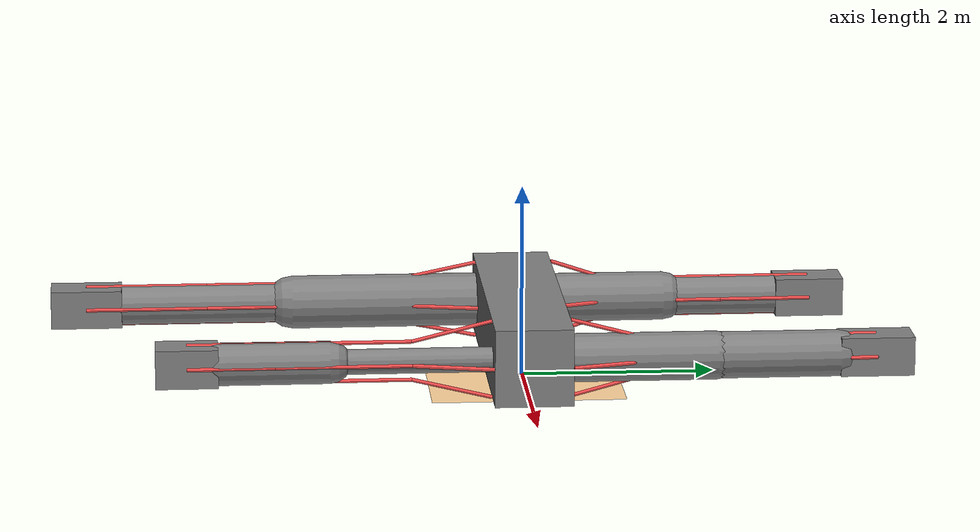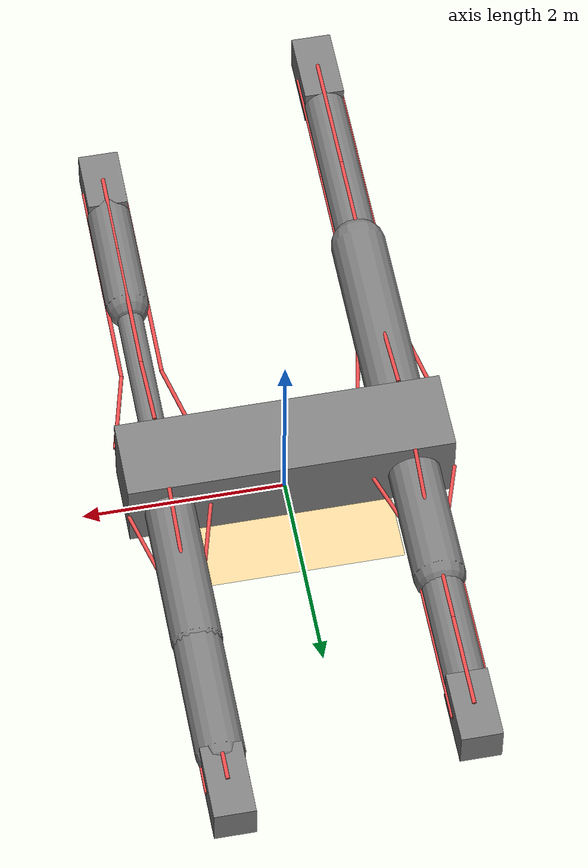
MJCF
<mujoco model="robot">
	<default>
		<default class="/"/>
	</default>
	<worldbody>
		<light name="//unnamed_light_0" class="/" directional="true" pos="-0.5 0.5 3" dir="0 0 -1"/>
		<geom name="floor" class="/" type="plane" size="1 1 1" rgba="1 0.83 0.61 0.5" pos="0 0 0"/>
		<body name="main" pos="0 0 0.5">
			<joint name="root" class="/" type="free" pos="0 0 0" limited="false" margin="0.01" armature="0" damping="0"/>
			<geom name="main_geom" class="/" type="box" size="1.6 0.4 0.4" pos="0 0 0"/>
			<site name="lf1_1" class="/" pos="1.2 0.4 0.4"/>
			<site name="lf1_2" class="/" pos="0.8 0.4 0"/>
			<site name="lf1_3" class="/" pos="1.2 0.4 -0.4"/>
			<site name="lf1_4" class="/" pos="1.6 0.4 0"/>
			<site name="rf1_1" class="/" pos="1.2 -0.4 0.4"/>
			<site name="rf1_2" class="/" pos="0.8 -0.4 0"/>
			<site name="rf1_3" class="/" pos="1.2 -0.4 -0.4"/>
			<site name="rf1_4" class="/" pos="1.6 -0.4 0"/>
			<site name="lb1_1" class="/" pos="-1.2 0.4 0.4"/>
			<site name="lb1_2" class="/" pos="-1.6 0.4 0"/>
			<site name="lb1_3" class="/" pos="-1.2 0.4 -0.4"/>
			<site name="lb1_4" class="/" pos="-0.8 0.4 0"/>
			<site name="rb1_1" class="/" pos="-1.2 -0.4 0.4"/>
			<site name="rb1_2" class="/" pos="-1.6 -0.4 0"/>
			<site name="rb1_3" class="/" pos="-1.2 -0.4 -0.4"/>
			<site name="rb1_4" class="/" pos="-0.8 -0.4 0"/>
			<body name="lf_leg1" pos="1.2 1.15 0">
				<geom name="lf_leg1_geom" class="/" type="capsule" size="0.247" fromto="0 -0.746 0 0 0.746 0" pos="0 0 0"/>
				<joint name="lf_leg1_Joint" class="/" type="ball" pos="0 -0.746 0" range="0 180"/>
				<site name="lf1_1e" class="/" pos="0 0 0.2"/>
				<site name="lf1_2e" class="/" pos="-0.2 0 0"/>
				<site name="lf1_3e" class="/" pos="0 0 -0.2"/>
				<site name="lf1_4e" class="/" pos="0.2 0 0"/>
				<site name="lf2_1" class="/" pos="0 0 0.2"/>
				<site name="lf2_2" class="/" pos="-0.2 0 0"/>
				<site name="lf2_3" class="/" pos="0 0 -0.2"/>
				<site name="lf2_4" class="/" pos="0.2 0 0"/>
				<body name="lf_leg2" pos="0 1.37 0">
					<geom name="lf_leg2_geom" class="/" type="capsule" size="0.238" fromto="0 -0.624 0 0 0.624 0" pos="0 0 0"/>
					<joint name="lf_leg2_Joint" class="/" type="ball" pos="0 -0.624 0" range="0 180"/>
					<site name="lf2_1e" class="/" pos="0 0 0.2"/>
					<site name="lf2_2e" class="/" pos="-0.2 0 0"/>
					<site name="lf2_3e" class="/" pos="0 0 -0.2"/>
					<site name="lf2_4e" class="/" pos="0.2 0 0"/>
					<site name="lf3_1" class="/" pos="0 0 0.2"/>
					<site name="lf3_2" class="/" pos="-0.2 0 0"/>
					<site name="lf3_3" class="/" pos="0 0 -0.2"/>
					<site name="lf3_4" class="/" pos="0.2 0 0"/>
					<body name="lf_leg3" pos="0 1 0">
						<geom name="lf_leg3_geom" class="/" type="box" size="0.2" fromto="0 -0.376 0 0 0.376 0" pos="0 0 0"/>
						<joint name="lf_leg3_Joint" class="/" type="ball" pos="0 -0.626 0" range="0 180"/>
						<site name="lf3_1e" class="/" pos="0 0 0.2"/>
						<site name="lf3_2e" class="/" pos="-0.2 0 0"/>
						<site name="lf3_3e" class="/" pos="0 0 -0.2"/>
						<site name="lf3_4e" class="/" pos="0.2 0 0"/>
					</body>
				</body>
			</body>
			<body name="rf_leg1" pos="1.2 -1.22 0">
				<geom name="rf_leg1_geom" class="/" type="capsule" size="0.128" fromto="0 -0.821 0 0 0.821 0" pos="0 0 0"/>
				<joint name="rf_leg1_Joint" class="/" type="ball" pos="0 0.821 0" range="0 180"/>
				<site name="rf1_1e" class="/" pos="0 0 0.2"/>
				<site name="rf1_2e" class="/" pos="-0.2 0 0"/>
				<site name="rf1_3e" class="/" pos="0 0 -0.2"/>
				<site name="rf1_4e" class="/" pos="0.2 0 0"/>
				<site name="rf2_1" class="/" pos="0 0 0.2"/>
				<site name="rf2_2" class="/" pos="-0.2 0 0"/>
				<site name="rf2_3" class="/" pos="0 0 -0.2"/>
				<site name="rf2_4" class="/" pos="0.2 0 0"/>
				<body name="rf_leg2" pos="0 -1.39 0">
					<geom name="rf_leg2_geom" class="/" type="capsule" size="0.217" fromto="0 -0.567 0 0 0.567 0" pos="0 0 0"/>
					<joint name="rf_leg2_Joint" class="/" type="ball" pos="0 0.567 0" range="0 180"/>
					<site name="rf2_1e" class="/" pos="0 0 0.2"/>
					<site name="rf2_2e" class="/" pos="-0.2 0 0"/>
					<site name="rf2_3e" class="/" pos="0 0 -0.2"/>
					<site name="rf2_4e" class="/" pos="0.2 0 0"/>
					<site name="rf3_1" class="/" pos="0 0 0.2"/>
					<site name="rf3_2" class="/" pos="-0.2 0 0"/>
					<site name="rf3_3" class="/" pos="0 0 -0.2"/>
					<site name="rf3_4" class="/" pos="0.2 0 0"/>
					<body name="rf_leg3" pos="0 -0.885 0">
						<geom name="rf_leg3_geom" class="/" type="box" size="0.2" fromto="0 -0.318 0 0 0.318 0" pos="0 0 0"/>
						<joint name="rf_leg3_Joint" class="/" type="ball" pos="0 0.568 0" range="0 180"/>
						<site name="rf3_1e" class="/" pos="0 0 0.2"/>
						<site name="rf3_2e" class="/" pos="-0.2 0 0"/>
						<site name="rf3_3e" class="/" pos="0 0 -0.2"/>
						<site name="rf3_4e" class="/" pos="0.2 0 0"/>
					</body>
				</body>
			</body>
			<body name="lb_leg1" pos="-1.2 0.996 0">
				<geom name="lb_leg1_geom" class="/" type="capsule" size="0.257" fromto="0 -0.596 0 0 0.596 0" pos="0 0 0"/>
				<joint name="lb_leg1_Joint" class="/" type="ball" pos="0 -0.596 0" range="0 180"/>
				<site name="lb1_1e" class="/" pos="0 0 0.2"/>
				<site name="lb1_2e" class="/" pos="-0.2 0 0"/>
				<site name="lb1_3e" class="/" pos="0 0 -0.2"/>
				<site name="lb1_4e" class="/" pos="0.2 0 0"/>
				<site name="lb2_1" class="/" pos="0 0 0.2"/>
				<site name="lb2_2" class="/" pos="-0.2 0 0"/>
				<site name="lb2_3" class="/" pos="0 0 -0.2"/>
				<site name="lb2_4" class="/" pos="0.2 0 0"/>
				<body name="lb_leg2" pos="0 1.2 0">
					<geom name="lb_leg2_geom" class="/" type="capsule" size="0.205" fromto="0 -0.599 0 0 0.599 0" pos="0 0 0"/>
					<joint name="lb_leg2_Joint" class="/" type="ball" pos="0 -0.599 0" range="0 180"/>
					<site name="lb2_1e" class="/" pos="0 0 0.2"/>
					<site name="lb2_2e" class="/" pos="-0.2 0 0"/>
					<site name="lb2_3e" class="/" pos="0 0 -0.2"/>
					<site name="lb2_4e" class="/" pos="0.2 0 0"/>
					<site name="lb3_1" class="/" pos="0 0 0.2"/>
					<site name="lb3_2" class="/" pos="-0.2 0 0"/>
					<site name="lb3_3" class="/" pos="0 0 -0.2"/>
					<site name="lb3_4" class="/" pos="0.2 0 0"/>
					<body name="lb_leg3" pos="0 0.958 0">
						<geom name="lb_leg3_geom" class="/" type="box" size="0.2" fromto="0 -0.359 0 0 0.359 0" pos="0 0 0"/>
						<joint name="lb_leg3_Joint" class="/" type="ball" pos="0 -0.609 0" range="0 180"/>
						<site name="lb3_1e" class="/" pos="0 0 0.2"/>
						<site name="lb3_2e" class="/" pos="-0.2 0 0"/>
						<site name="lb3_3e" class="/" pos="0 0 -0.2"/>
						<site name="lb3_4e" class="/" pos="0.2 0 0"/>
					</body>
				</body>
			</body>
			<body name="rb_leg1" pos="-1.2 -1.38 0">
				<geom name="rb_leg1_geom" class="/" type="capsule" size="0.279" fromto="0 -0.977 0 0 0.977 0" pos="0 0 0"/>
				<joint name="rb_leg1_Joint" class="/" type="ball" pos="0 0.977 0" range="0 180"/>
				<site name="rb1_1e" class="/" pos="0 0 0.2"/>
				<site name="rb1_2e" class="/" pos="-0.2 0 0"/>
				<site name="rb1_3e" class="/" pos="0 0 -0.2"/>
				<site name="rb1_4e" class="/" pos="0.2 0 0"/>
				<site name="rb2_1" class="/" pos="0 0 0.2"/>
				<site name="rb2_2" class="/" pos="-0.2 0 0"/>
				<site name="rb2_3" class="/" pos="0 0 -0.2"/>
				<site name="rb2_4" class="/" pos="0.2 0 0"/>
				<body name="rb_leg2" pos="0 -1.88 0">
					<geom name="rb_leg2_geom" class="/" type="capsule" size="0.207" fromto="0 -0.899 0 0 0.899 0" pos="0 0 0"/>
					<joint name="rb_leg2_Joint" class="/" type="ball" pos="0 0.899 0" range="0 180"/>
					<site name="rb2_1e" class="/" pos="0 0 0.2"/>
					<site name="rb2_2e" class="/" pos="-0.2 0 0"/>
					<site name="rb2_3e" class="/" pos="0 0 -0.2"/>
					<site name="rb2_4e" class="/" pos="0.2 0 0"/>
					<site name="rb3_1" class="/" pos="0 0 0.2"/>
					<site name="rb3_2" class="/" pos="-0.2 0 0"/>
					<site name="rb3_3" class="/" pos="0 0 -0.2"/>
					<site name="rb3_4" class="/" pos="0.2 0 0"/>
					<body name="rb_leg3" pos="0 -1.27 0">
						<geom name="rb_leg3_geom" class="/" type="box" size="0.2" fromto="0 -0.372 0 0 0.372 0" pos="0 0 0"/>
						<joint name="rb_leg3_Joint" class="/" type="ball" pos="0 0.622 0" range="0 180"/>
						<site name="rb3_1e" class="/" pos="0 0 0.2"/>
						<site name="rb3_2e" class="/" pos="-0.2 0 0"/>
						<site name="rb3_3e" class="/" pos="0 0 -0.2"/>
						<site name="rb3_4e" class="/" pos="0.2 0 0"/>
					</body>
				</body>
			</body>
		</body>
	</worldbody>
	<tendon>
		<spatial name="lf1_1" class="/" width="0.02" rgba="0.95 0.3 0.3 1">
			<site site="lf1_1"/>
			<site site="lf1_1e"/>
		</spatial>
		<spatial name="lf1_2" class="/" width="0.02" rgba="0.95 0.3 0.3 1">
			<site site="lf1_2"/>
			<site site="lf1_2e"/>
		</spatial>
		<spatial name="lf1_3" class="/" width="0.02" rgba="0.95 0.3 0.3 1">
			<site site="lf1_3"/>
			<site site="lf1_3e"/>
		</spatial>
		<spatial name="lf1_4" class="/" width="0.02" rgba="0.95 0.3 0.3 1">
			<site site="lf1_4"/>
			<site site="lf1_4e"/>
		</spatial>
		<spatial name="lf2_1" class="/" width="0.02" rgba="0.95 0.3 0.3 1">
			<site site="lf2_1"/>
			<site site="lf2_1e"/>
		</spatial>
		<spatial name="lf2_2" class="/" width="0.02" rgba="0.95 0.3 0.3 1">
			<site site="lf2_2"/>
			<site site="lf2_2e"/>
		</spatial>
		<spatial name="lf2_3" class="/" width="0.02" rgba="0.95 0.3 0.3 1">
			<site site="lf2_3"/>
			<site site="lf2_3e"/>
		</spatial>
		<spatial name="lf2_4" class="/" width="0.02" rgba="0.95 0.3 0.3 1">
			<site site="lf2_4"/>
			<site site="lf2_4e"/>
		</spatial>
		<spatial name="lf3_1" class="/" width="0.02" rgba="0.95 0.3 0.3 1">
			<site site="lf3_1"/>
			<site site="lf3_1e"/>
		</spatial>
		<spatial name="lf3_2" class="/" width="0.02" rgba="0.95 0.3 0.3 1">
			<site site="lf3_2"/>
			<site site="lf3_2e"/>
		</spatial>
		<spatial name="lf3_3" class="/" width="0.02" rgba="0.95 0.3 0.3 1">
			<site site="lf3_3"/>
			<site site="lf3_3e"/>
		</spatial>
		<spatial name="lf3_4" class="/" width="0.02" rgba="0.95 0.3 0.3 1">
			<site site="lf3_4"/>
			<site site="lf3_4e"/>
		</spatial>
		<spatial name="rf1_1" class="/" width="0.02" rgba="0.95 0.3 0.3 1">
			<site site="rf1_1"/>
			<site site="rf1_1e"/>
		</spatial>
		<spatial name="rf1_2" class="/" width="0.02" rgba="0.95 0.3 0.3 1">
			<site site="rf1_2"/>
			<site site="rf1_2e"/>
		</spatial>
		<spatial name="rf1_3" class="/" width="0.02" rgba="0.95 0.3 0.3 1">
			<site site="rf1_3"/>
			<site site="rf1_3e"/>
		</spatial>
		<spatial name="rf1_4" class="/" width="0.02" rgba="0.95 0.3 0.3 1">
			<site site="rf1_4"/>
			<site site="rf1_4e"/>
		</spatial>
		<spatial name="rf2_1" class="/" width="0.02" rgba="0.95 0.3 0.3 1">
			<site site="rf2_1"/>
			<site site="rf2_1e"/>
		</spatial>
		<spatial name="rf2_2" class="/" width="0.02" rgba="0.95 0.3 0.3 1">
			<site site="rf2_2"/>
			<site site="rf2_2e"/>
		</spatial>
		<spatial name="rf2_3" class="/" width="0.02" rgba="0.95 0.3 0.3 1">
			<site site="rf2_3"/>
			<site site="rf2_3e"/>
		</spatial>
		<spatial name="rf2_4" class="/" width="0.02" rgba="0.95 0.3 0.3 1">
			<site site="rf2_4"/>
			<site site="rf2_4e"/>
		</spatial>
		<spatial name="rf3_1" class="/" width="0.02" rgba="0.95 0.3 0.3 1">
			<site site="rf3_1"/>
			<site site="rf3_1e"/>
		</spatial>
		<spatial name="rf3_2" class="/" width="0.02" rgba="0.95 0.3 0.3 1">
			<site site="rf3_2"/>
			<site site="rf3_2e"/>
		</spatial>
		<spatial name="rf3_3" class="/" width="0.02" rgba="0.95 0.3 0.3 1">
			<site site="rf3_3"/>
			<site site="rf3_3e"/>
		</spatial>
		<spatial name="rf3_4" class="/" width="0.02" rgba="0.95 0.3 0.3 1">
			<site site="rf3_4"/>
			<site site="rf3_4e"/>
		</spatial>
		<spatial name="lb1_1" class="/" width="0.02" rgba="0.95 0.3 0.3 1">
			<site site="lb1_1"/>
			<site site="lb1_1e"/>
		</spatial>
		<spatial name="lb1_2" class="/" width="0.02" rgba="0.95 0.3 0.3 1">
			<site site="lb1_2"/>
			<site site="lb1_2e"/>
		</spatial>
		<spatial name="lb1_3" class="/" width="0.02" rgba="0.95 0.3 0.3 1">
			<site site="lb1_3"/>
			<site site="lb1_3e"/>
		</spatial>
		<spatial name="lb1_4" class="/" width="0.02" rgba="0.95 0.3 0.3 1">
			<site site="lb1_4"/>
			<site site="lb1_4e"/>
		</spatial>
		<spatial name="lb2_1" class="/" width="0.02" rgba="0.95 0.3 0.3 1">
			<site site="lb2_1"/>
			<site site="lb2_1e"/>
		</spatial>
		<spatial name="lb2_2" class="/" width="0.02" rgba="0.95 0.3 0.3 1">
			<site site="lb2_2"/>
			<site site="lb2_2e"/>
		</spatial>
		<spatial name="lb2_3" class="/" width="0.02" rgba="0.95 0.3 0.3 1">
			<site site="lb2_3"/>
			<site site="lb2_3e"/>
		</spatial>
		<spatial name="lb2_4" class="/" width="0.02" rgba="0.95 0.3 0.3 1">
			<site site="lb2_4"/>
			<site site="lb2_4e"/>
		</spatial>
		<spatial name="lb3_1" class="/" width="0.02" rgba="0.95 0.3 0.3 1">
			<site site="lb3_1"/>
			<site site="lb3_1e"/>
		</spatial>
		<spatial name="lb3_2" class="/" width="0.02" rgba="0.95 0.3 0.3 1">
			<site site="lb3_2"/>
			<site site="lb3_2e"/>
		</spatial>
		<spatial name="lb3_3" class="/" width="0.02" rgba="0.95 0.3 0.3 1">
			<site site="lb3_3"/>
			<site site="lb3_3e"/>
		</spatial>
		<spatial name="lb3_4" class="/" width="0.02" rgba="0.95 0.3 0.3 1">
			<site site="lb3_4"/>
			<site site="lb3_4e"/>
		</spatial>
		<spatial name="rb1_1" class="/" width="0.02" rgba="0.95 0.3 0.3 1">
			<site site="rb1_1"/>
			<site site="rb1_1e"/>
		</spatial>
		<spatial name="rb1_2" class="/" width="0.02" rgba="0.95 0.3 0.3 1">
			<site site="rb1_2"/>
			<site site="rb1_2e"/>
		</spatial>
		<spatial name="rb1_3" class="/" width="0.02" rgba="0.95 0.3 0.3 1">
			<site site="rb1_3"/>
			<site site="rb1_3e"/>
		</spatial>
		<spatial name="rb1_4" class="/" width="0.02" rgba="0.95 0.3 0.3 1">
			<site site="rb1_4"/>
			<site site="rb1_4e"/>
		</spatial>
		<spatial name="rb2_1" class="/" width="0.02" rgba="0.95 0.3 0.3 1">
			<site site="rb2_1"/>
			<site site="rb2_1e"/>
		</spatial>
		<spatial name="rb2_2" class="/" width="0.02" rgba="0.95 0.3 0.3 1">
			<site site="rb2_2"/>
			<site site="rb2_2e"/>
		</spatial>
		<spatial name="rb2_3" class="/" width="0.02" rgba="0.95 0.3 0.3 1">
			<site site="rb2_3"/>
			<site site="rb2_3e"/>
		</spatial>
		<spatial name="rb2_4" class="/" width="0.02" rgba="0.95 0.3 0.3 1">
			<site site="rb2_4"/>
			<site site="rb2_4e"/>
		</spatial>
		<spatial name="rb3_1" class="/" width="0.02" rgba="0.95 0.3 0.3 1">
			<site site="rb3_1"/>
			<site site="rb3_1e"/>
		</spatial>
		<spatial name="rb3_2" class="/" width="0.02" rgba="0.95 0.3 0.3 1">
			<site site="rb3_2"/>
			<site site="rb3_2e"/>
		</spatial>
		<spatial name="rb3_3" class="/" width="0.02" rgba="0.95 0.3 0.3 1">
			<site site="rb3_3"/>
			<site site="rb3_3e"/>
		</spatial>
		<spatial name="rb3_4" class="/" width="0.02" rgba="0.95 0.3 0.3 1">
			<site site="rb3_4"/>
			<site site="rb3_4e"/>
		</spatial>
	</tendon>
	<actuator>
		<muscle name="lfm1_1" class="/" tendon="lf1_1"/>
		<muscle name="lfm1_2" class="/" tendon="lf1_2"/>
		<muscle name="lfm1_3" class="/" tendon="lf1_3"/>
		<muscle name="lfm1_4" class="/" tendon="lf1_4"/>
		<muscle name="lfm2_1" class="/" tendon="lf2_1"/>
		<muscle name="lfm2_2" class="/" tendon="lf2_2"/>
		<muscle name="lfm2_3" class="/" tendon="lf2_3"/>
		<muscle name="lfm2_4" class="/" tendon="lf2_4"/>
		<muscle name="lfm3_1" class="/" tendon="lf3_1"/>
		<muscle name="lfm3_2" class="/" tendon="lf3_2"/>
		<muscle name="lfm3_3" class="/" tendon="lf3_3"/>
		<muscle name="lfm3_4" class="/" tendon="lf3_4"/>
		<muscle name="lbm1_1" class="/" tendon="lb1_1"/>
		<muscle name="lbm1_2" class="/" tendon="lb1_2"/>
		<muscle name="lbm1_3" class="/" tendon="lb1_3"/>
		<muscle name="lbm1_4" class="/" tendon="lb1_4"/>
		<muscle name="lbm2_1" class="/" tendon="lb2_1"/>
		<muscle name="lbm2_2" class="/" tendon="lb2_2"/>
		<muscle name="lbm2_3" class="/" tendon="lb2_3"/>
		<muscle name="lbm2_4" class="/" tendon="lb2_4"/>
		<muscle name="lbm3_1" class="/" tendon="lb3_1"/>
		<muscle name="lbm3_2" class="/" tendon="lb3_2"/>
		<muscle name="lbm3_3" class="/" tendon="lb3_3"/>
		<muscle name="lbm3_4" class="/" tendon="lb3_4"/>
		<muscle name="rfm1_1" class="/" tendon="rf1_1"/>
		<muscle name="rfm1_2" class="/" tendon="rf1_2"/>
		<muscle name="rfm1_3" class="/" tendon="rf1_3"/>
		<muscle name="rfm1_4" class="/" tendon="rf1_4"/>
		<muscle name="rfm2_1" class="/" tendon="rf2_1"/>
		<muscle name="rfm2_2" class="/" tendon="rf2_2"/>
		<muscle name="rfm2_3" class="/" tendon="rf2_3"/>
		<muscle name="rfm2_4" class="/" tendon="rf2_4"/>
		<muscle name="rfm3_1" class="/" tendon="rf3_1"/>
		<muscle name="rfm3_2" class="/" tendon="rf3_2"/>
		<muscle name="rfm3_3" class="/" tendon="rf3_3"/>
		<muscle name="rfm3_4" class="/" tendon="rf3_4"/>
		<muscle name="rbm1_1" class="/" tendon="rb1_1"/>
		<muscle name="rbm1_2" class="/" tendon="rb1_2"/>
		<muscle name="rbm1_3" class="/" tendon="rb1_3"/>
		<muscle name="rbm1_4" class="/" tendon="rb1_4"/>
		<muscle name="rbm2_1" class="/" tendon="rb2_1"/>
		<muscle name="rbm2_2" class="/" tendon="rb2_2"/>
		<muscle name="rbm2_3" class="/" tendon="rb2_3"/>
		<muscle name="rbm2_4" class="/" tendon="rb2_4"/>
		<muscle name="rbm3_1" class="/" tendon="rb3_1"/>
		<muscle name="rbm3_2" class="/" tendon="rb3_2"/>
		<muscle name="rbm3_3" class="/" tendon="rb3_3"/>
		<muscle name="rbm3_4" class="/" tendon="rb3_4"/>
	</actuator>
</mujoco>
